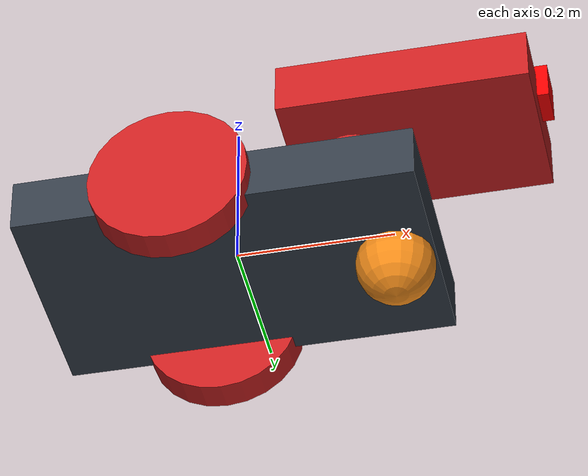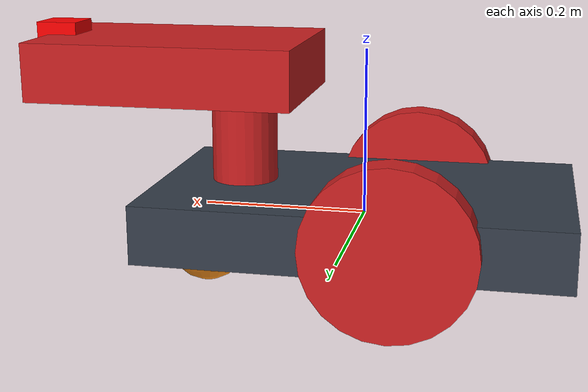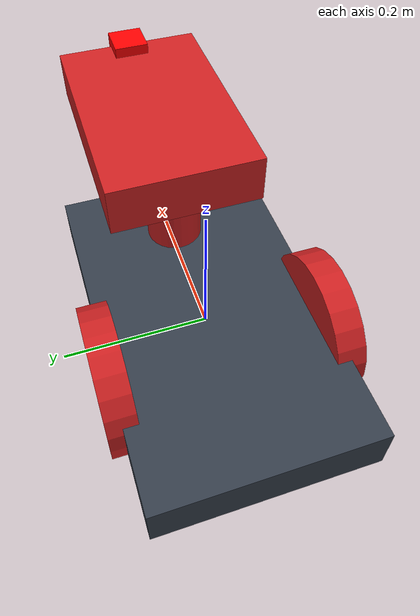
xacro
<?xml version="1.0"?>
<robot xmlns:xacro="http://www.ros.org/wiki/xacro" name="robot_xacro">
<xacro:include filename="$(find exp_assignment2)/urdf/robot.gazebo"/>

	<!-- macro to define length and radius of the wheel -->
	<xacro:property name="length_wheel" value="0.04" />
	<xacro:property name="radius_wheel" value="0.1" />

	<!-- macro to define length and radius of the neck -->
	<xacro:property name="length_neck" value="0.15" />
	<xacro:property name="radius_neck" value="0.04" />

  <xacro:property name="x_chassis" value="0.5" />
  <xacro:property name="y_chassis" value="0.3" />
  <xacro:property name="z_chassis" value="0.07" />

  <xacro:property name="x_head" value="0.32" />
  <xacro:property name="y_head" value="0.21" />
  <xacro:property name="z_head" value="0.07" />

	<xacro:macro name="inertial_box" params="mass x y z">
               <inertial>
                       <mass value="${mass}" />

                       <inertia  ixx="${mass*(y*y+z*z)/12}" ixy = "0" ixz = "0"
                                 iyy="${mass*(x*x+z*z)/12}" iyz = "0"
                                 izz="${mass*(x*x+z*z)/12}" />
                </inertial>
	</xacro:macro>

    <xacro:macro name="inertial_cylinder" params="mass r h">
               <inertial>
                       <mass value="${mass}" />

                       <inertia  ixx="${(mass*((3*r*r)+(h*h)))/12}" ixy = "0" ixz = "0"
                                 iyy="${(mass*((3*r*r)+(h*h)))/12}" iyz = "0"
                                 izz="${(mass*r*r)/2}" />
                </inertial>
  </xacro:macro>

    <xacro:macro name="head_geometry">
    <geometry>
            <box size="${x_head} ${y_head} ${z_head}"/>
        </geometry>
  </xacro:macro>

    <xacro:macro name="chassis_geometry">
    <geometry>
            <box size="${x_chassis} ${y_chassis} ${z_chassis}"/>
        </geometry>
  </xacro:macro>

  <xacro:macro name="wheel_geometry">
		<geometry>
       			<cylinder length="${length_wheel}" radius="${radius_wheel}"/>
     		</geometry>
	</xacro:macro>

	<xacro:macro name="neck_geometry">
		<geometry>
       			<cylinder length="${length_neck}" radius="${radius_neck}"/>
     		</geometry>
	</xacro:macro>

  <material name="black">
    <color rgba="0.0 0.0 0.0 1.0"/>
  </material>
  <material name="blue">
    <color rgba="0.203125 0.23828125 0.28515625 1.0"/>
  </material>
  <material name="green">
    <color rgba="0.0 0.8 0.0 1.0"/>
  </material>
  <material name="grey">
    <color rgba="0.2 0.2 0.2 1.0"/>
  </material>
  <material name="orange">
    <color rgba="1.0 0.423529411765 0.0392156862745 1.0"/>
  </material>
  <material name="brown">
    <color rgba="0.870588235294 0.811764705882 0.764705882353 1.0"/>
  </material>
  <material name="red">
    <color rgba="0.80078125 0.12890625 0.1328125 1.0"/>
  </material>
  <material name="white">
    <color rgba="1.0 1.0 1.0 1.0"/>
  </material>

	  <link name="link_chassis">
	<!-- pose and inertial -->
    <pose>0 0 0.1 0 0 0</pose>
      <origin rpy="0 0 0" xyz="0 0 0.1"/>
      <xacro:inertial_box mass="5" x="${x_chassis}" y="${y_chassis}" z="${z_chassis}"/>

	<!-- body -->
    <collision name="collision_chassis">
      <origin rpy="0 0 0" xyz="0 0 0.1"/>
      <xacro:chassis_geometry />
    </collision>
    <visual>
      <xacro:chassis_geometry />
      <material name="blue"/>
    </visual>
	<!-- caster front -->
    <collision name="caster_front_collision">
      <origin rpy=" 0 0 0" xyz="0.35 0 -0.05"/>
      <geometry>
        <sphere radius="0.05"/>
      </geometry>
    </collision>
    <visual name="caster_front_visual">
      <origin rpy=" 0 0 0" xyz="0.2 0 -0.05"/>
      <geometry>
        <sphere radius="0.05"/>
      </geometry>
    </visual>
 </link>

	<!-- neck -->
  <link name="link_neck">
    <xacro:inertial_cylinder mass="0.2" r="${radius_neck}" h="${length_neck}"/>
    <collision name="neck_collision">
      <origin rpy=" 0 0 0" xyz="0 0 0"/>
      <xacro:neck_geometry />
    </collision>
    <visual name="neck_visual">
      <origin rpy=" 0 0 0" xyz="0 0 0"/>
      <xacro:neck_geometry />
       <material name="red"/>
    </visual>
  </link>

	<!-- head -->
 <link name="link_head">
    <origin rpy="0 0 0" xyz="0.08 0 0"/>
    <xacro:inertial_box mass="0.8" x="${x_head}" y="${y_head}" z="${z_head}"/>
    <collision name="link_head_collision">
      <xacro:head_geometry />
    </collision>
    <visual name="link_head_visual">
      <origin rpy="0 0 0" xyz="0.08 0 0"/>
      <xacro:head_geometry />
      <material name="red"/>
    </visual>
  </link>

	<!-- right wheel -->
   <link name="link_right_wheel">
    <xacro:inertial_cylinder mass="0.2" r="${radius_wheel}" h="${length_wheel}"/>
    <collision name="link_right_wheel_collision">
      <origin rpy="0 1.5707 1.5707" xyz="0 0 0"/>
      <xacro:wheel_geometry />
    </collision>
    <visual name="link_right_wheel_visual">
      <origin rpy="0 1.5707 1.5707" xyz="0 0 0"/>
      <xacro:wheel_geometry />
      <material name="red"/>
    </visual>
  </link>

	<!-- left wheel -->
   <link name="link_left_wheel">
    <xacro:inertial_cylinder mass="0.2" r="${radius_wheel}" h="${length_wheel}"/>
    <collision name="link_left_wheel_collision">
      <origin rpy="0 1.5707 1.5707" xyz="0 0 0"/>
      <xacro:wheel_geometry />
    </collision>
    <visual name="link_left_wheel_visual">
      <origin rpy="0 1.5707 1.5707" xyz="0 0 0"/>
      <xacro:wheel_geometry />
      <material name="red"/>
    </visual>
   </link>

   <joint name="joint_neck" type="fixed">
    <axis xyz="0 0 1"/>
    <origin rpy="0 0 0" xyz="0.15 0 0.075"/>
    <child link="link_neck"/>
    <parent link="link_chassis"/>
   </joint>

   <joint name="joint_head" type="fixed">
    <origin rpy="0 0 0" xyz="0 0 0.1"/>
    <child link="link_head"/>
    <parent link="link_neck"/>
    <axis rpy="0 0 0" xyz="0 1 0"/>
   </joint>

   <joint name="joint_right_wheel" type="continuous">
    <origin rpy="0 0 0" xyz="-0.05 0.15 0"/>
    <child link="link_right_wheel"/>
    <parent link="link_chassis"/>
    <axis rpy="0 0 0" xyz="0 1 0"/>
    <limit effort="10000" velocity="1000"/>
    <joint_properties damping="1.0" friction="1.0"/>
   </joint>

   <joint name="joint_left_wheel" type="continuous">
    <origin rpy="0 0 0" xyz="-0.05 -0.15 0"/>
    <child link="link_left_wheel"/>
    <parent link="link_chassis"/>
    <axis rpy="0 0 0" xyz="0 1 0"/>
    <limit effort="10000" velocity="1000"/>
    <joint_properties damping="1.0" friction="1.0"/>
   </joint>

  <link name="camera_link">
	    <collision>
	      <origin xyz="0 0 0.025" rpy="0 0 0"/>
	      <geometry>
		<box size="0.05 0.05 0.05"/>
	      </geometry>
	    </collision>
	    <visual>
	      <origin xyz="0 0 0.025" rpy="0 0 0"/>
	      <geometry>
		<box size="0.05 0.05 0.05"/>
	      </geometry>
	      <material name="red">
		<color rgba="1 0 0 1"/>
	      </material>
	    </visual>
	    <inertial>
	      <mass value="1e-5" />
	      <origin xyz="0 0 0" rpy="0 0 0"/>
	      <inertia ixx="1e-6" ixy="0" ixz="0" iyy="1e-6" iyz="0" izz="1e-6" />
	    </inertial>
  </link>

  <joint name="camera_joint" type="fixed">
	    <axis xyz="0 1 0" />
	    <origin xyz="0.23 0 0.0" rpy="0 0 0"/>
	    <parent link="link_head"/>
	    <child link="camera_link"/>
	 </joint>

</robot>
